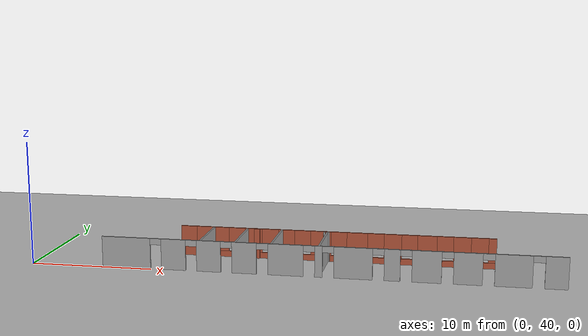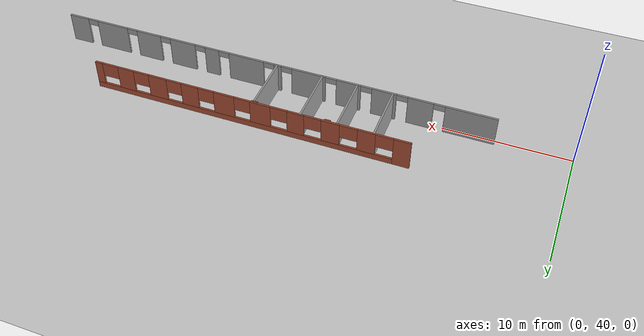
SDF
<sdf version="1.6">
 <world name="default">
  <model name="ground_plane">
   <static>1</static>
   <link name="link">
    <collision name="collision">
     <geometry><plane><normal>0 0 1</normal><size>100 100</size></plane></geometry>
     <surface><friction><ode><mu>100</mu><mu2>50</mu2></ode></friction></surface>
    </collision>
    <visual name="visual">
     <cast_shadows>0</cast_shadows>
     <geometry><plane><normal>0 0 1</normal><size>100 100</size></plane></geometry>
     <material>
      <script><uri>file://media/materials/scripts/gazebo.material</uri><name>Gazebo/Grey</name></script>
     </material>
    </visual>
   </link>
  </model>
  <model name="CVSSP">
   <pose>23.8714 24.094 0 0 -0 0</pose>
   <link name="Wall_303">
    <pose>0.29478 20.9408 0 0 -0 0</pose>
    <visual name="Wall_303_Visual_0">
     <pose>-12.3344 0 1.25 0 -0 0</pose>
     <geometry><box><size>1.33119 0.15 2.5</size></box></geometry>
     <material>
      <script><uri>file://media/materials/scripts/gazebo.material</uri><name>Gazebo/Bricks</name></script>
      <ambient>1 1 1 1</ambient>
     </material>
    </visual>
    <collision name="Wall_303_Collision_0">
     <geometry><box><size>1.33119 0.15 2.5</size></box></geometry>
     <pose>-12.3344 0 1.25 0 -0 0</pose>
    </collision>
    <visual name="Wall_303_Visual_1">
     <pose>0.665598 0 0.25 0 -0 0</pose>
     <geometry><box><size>24.6688 0.15 0.5</size></box></geometry>
     <material>
      <script><uri>file://media/materials/scripts/gazebo.material</uri><name>Gazebo/Bricks</name></script>
      <ambient>1 1 1 1</ambient>
     </material>
    </visual>
    <collision name="Wall_303_Collision_1">
     <geometry><box><size>24.6688 0.15 0.5</size></box></geometry>
     <pose>0.665598 0 0.25 0 -0 0</pose>
    </collision>
    <visual name="Wall_303_Visual_2">
     <pose>-9.60766 0 1.5 0 -0 0</pose>
     <geometry><box><size>1.38884 0.15 2</size></box></geometry>
     <material>
      <script><uri>file://media/materials/scripts/gazebo.material</uri><name>Gazebo/Bricks</name></script>
      <ambient>1 1 1 1</ambient>
     </material>
    </visual>
    <collision name="Wall_303_Collision_2">
     <geometry><box><size>1.38884 0.15 2</size></box></geometry>
     <pose>-9.60766 0 1.5 0 -0 0</pose>
    </collision>
    <visual name="Wall_303_Visual_3">
     <pose>-6.80389 0 1.5 0 -0 0</pose>
     <geometry><box><size>1.45124 0.15 2</size></box></geometry>
     <material>
      <script><uri>file://media/materials/scripts/gazebo.material</uri><name>Gazebo/Bricks</name></script>
      <ambient>1 1 1 1</ambient>
     </material>
    </visual>
    <collision name="Wall_303_Collision_3">
     <geometry><box><size>1.45124 0.15 2</size></box></geometry>
     <pose>-6.80389 0 1.5 0 -0 0</pose>
    </collision>
    <visual name="Wall_303_Visual_4">
     <pose>-4.03476 0 1.5 0 -0 0</pose>
     <geometry><box><size>1.34223 0.15 2</size></box></geometry>
     <material>
      <script><uri>file://media/materials/scripts/gazebo.material</uri><name>Gazebo/Bricks</name></script>
      <ambient>1 1 1 1</ambient>
     </material>
    </visual>
    <collision name="Wall_303_Collision_4">
     <geometry><box><size>1.34223 0.15 2</size></box></geometry>
     <pose>-4.03476 0 1.5 0 -0 0</pose>
    </collision>
    <visual name="Wall_303_Visual_5">
     <pose>-1.16996 0 1.5 0 -0 0</pose>
     <geometry><box><size>1.6766 0.15 2</size></box></geometry>
     <material>
      <script><uri>file://media/materials/scripts/gazebo.material</uri><name>Gazebo/Bricks</name></script>
      <ambient>1 1 1 1</ambient>
     </material>
    </visual>
    <collision name="Wall_303_Collision_5">
     <geometry><box><size>1.6766 0.15 2</size></box></geometry>
     <pose>-1.16996 0 1.5 0 -0 0</pose>
    </collision>
    <visual name="Wall_303_Visual_6">
     <pose>1.82803 0 1.5 0 -0 0</pose>
     <geometry><box><size>1.7106 0.15 2</size></box></geometry>
     <material>
      <script><uri>file://media/materials/scripts/gazebo.material</uri><name>Gazebo/Bricks</name></script>
      <ambient>1 1 1 1</ambient>
     </material>
    </visual>
    <collision name="Wall_303_Collision_6">
     <geometry><box><size>1.7106 0.15 2</size></box></geometry>
     <pose>1.82803 0 1.5 0 -0 0</pose>
    </collision>
    <visual name="Wall_303_Visual_7">
     <pose>4.72401 0 1.5 0 -0 0</pose>
     <geometry><box><size>1.43857 0.15 2</size></box></geometry>
     <material>
      <script><uri>file://media/materials/scripts/gazebo.material</uri><name>Gazebo/Bricks</name></script>
      <ambient>1 1 1 1</ambient>
     </material>
    </visual>
    <collision name="Wall_303_Collision_7">
     <geometry><box><size>1.43857 0.15 2</size></box></geometry>
     <pose>4.72401 0 1.5 0 -0 0</pose>
    </collision>
    <visual name="Wall_303_Visual_8">
     <pose>7.50097 0 1.5 0 -0 0</pose>
     <geometry><box><size>1.55192 0.15 2</size></box></geometry>
     <material>
      <script><uri>file://media/materials/scripts/gazebo.material</uri><name>Gazebo/Bricks</name></script>
      <ambient>1 1 1 1</ambient>
     </material>
    </visual>
    <collision name="Wall_303_Collision_8">
     <geometry><box><size>1.55192 0.15 2</size></box></geometry>
     <pose>7.50097 0 1.5 0 -0 0</pose>
    </collision>
    <visual name="Wall_303_Visual_9">
     <pose>10.2921 0 1.5 0 -0 0</pose>
     <geometry><box><size>1.3989 0.15 2</size></box></geometry>
     <material>
      <script><uri>file://media/materials/scripts/gazebo.material</uri><name>Gazebo/Bricks</name></script>
      <ambient>1 1 1 1</ambient>
     </material>
    </visual>
    <collision name="Wall_303_Collision_9">
     <geometry><box><size>1.3989 0.15 2</size></box></geometry>
     <pose>10.2921 0 1.5 0 -0 0</pose>
    </collision>
    <visual name="Wall_303_Visual_10">
     <pose>12.682 0 1.5 0 -0 0</pose>
     <geometry><box><size>0.636054 0.15 2</size></box></geometry>
     <material>
      <script><uri>file://media/materials/scripts/gazebo.material</uri><name>Gazebo/Bricks</name></script>
      <ambient>1 1 1 1</ambient>
     </material>
    </visual>
    <collision name="Wall_303_Collision_10">
     <geometry><box><size>0.636054 0.15 2</size></box></geometry>
     <pose>12.682 0 1.5 0 -0 0</pose>
    </collision>
    <visual name="Wall_303_Visual_11">
     <pose>-10.9854 0 1.9 0 -0 0</pose>
     <geometry><box><size>1.36673 0.15 1.2</size></box></geometry>
     <material>
      <script><uri>file://media/materials/scripts/gazebo.material</uri><name>Gazebo/Bricks</name></script>
      <ambient>1 1 1 1</ambient>
     </material>
    </visual>
    <collision name="Wall_303_Collision_11">
     <geometry><box><size>1.36673 0.15 1.2</size></box></geometry>
     <pose>-10.9854 0 1.9 0 -0 0</pose>
    </collision>
    <visual name="Wall_303_Visual_12">
     <pose>-8.22138 0 1.9 0 -0 0</pose>
     <geometry><box><size>1.38373 0.15 1.2</size></box></geometry>
     <material>
      <script><uri>file://media/materials/scripts/gazebo.material</uri><name>Gazebo/Bricks</name></script>
      <ambient>1 1 1 1</ambient>
     </material>
    </visual>
    <collision name="Wall_303_Collision_12">
     <geometry><box><size>1.38373 0.15 1.2</size></box></geometry>
     <pose>-8.22138 0 1.9 0 -0 0</pose>
    </collision>
    <visual name="Wall_303_Visual_13">
     <pose>-5.39208 0 1.9 0 -0 0</pose>
     <geometry><box><size>1.37239 0.15 1.2</size></box></geometry>
     <material>
      <script><uri>file://media/materials/scripts/gazebo.material</uri><name>Gazebo/Bricks</name></script>
      <ambient>1 1 1 1</ambient>
     </material>
    </visual>
    <collision name="Wall_303_Collision_13">
     <geometry><box><size>1.37239 0.15 1.2</size></box></geometry>
     <pose>-5.39208 0 1.9 0 -0 0</pose>
    </collision>
    <visual name="Wall_303_Visual_14">
     <pose>-2.68595 0 1.9 0 -0 0</pose>
     <geometry><box><size>1.35539 0.15 1.2</size></box></geometry>
     <material>
      <script><uri>file://media/materials/scripts/gazebo.material</uri><name>Gazebo/Bricks</name></script>
      <ambient>1 1 1 1</ambient>
     </material>
    </visual>
    <collision name="Wall_303_Collision_14">
     <geometry><box><size>1.35539 0.15 1.2</size></box></geometry>
     <pose>-2.68595 0 1.9 0 -0 0</pose>
    </collision>
    <visual name="Wall_303_Visual_15">
     <pose>0.320535 0 1.9 0 -0 0</pose>
     <geometry><box><size>1.30439 0.15 1.2</size></box></geometry>
     <material>
      <script><uri>file://media/materials/scripts/gazebo.material</uri><name>Gazebo/Bricks</name></script>
      <ambient>1 1 1 1</ambient>
     </material>
    </visual>
    <collision name="Wall_303_Collision_15">
     <geometry><box><size>1.30439 0.15 1.2</size></box></geometry>
     <pose>0.320535 0 1.9 0 -0 0</pose>
    </collision>
    <visual name="Wall_303_Visual_16">
     <pose>3.34402 0 1.9 0 -0 0</pose>
     <geometry><box><size>1.32139 0.15 1.2</size></box></geometry>
     <material>
      <script><uri>file://media/materials/scripts/gazebo.material</uri><name>Gazebo/Bricks</name></script>
      <ambient>1 1 1 1</ambient>
     </material>
    </visual>
    <collision name="Wall_303_Collision_16">
     <geometry><box><size>1.32139 0.15 1.2</size></box></geometry>
     <pose>3.34402 0 1.9 0 -0 0</pose>
    </collision>
    <visual name="Wall_303_Visual_17">
     <pose>6.08415 0 1.9 0 -0 0</pose>
     <geometry><box><size>1.28172 0.15 1.2</size></box></geometry>
     <material>
      <script><uri>file://media/materials/scripts/gazebo.material</uri><name>Gazebo/Bricks</name></script>
      <ambient>1 1 1 1</ambient>
     </material>
    </visual>
    <collision name="Wall_303_Collision_17">
     <geometry><box><size>1.28172 0.15 1.2</size></box></geometry>
     <pose>6.08415 0 1.9 0 -0 0</pose>
    </collision>
    <visual name="Wall_303_Visual_18">
     <pose>8.93479 0 1.9 0 -0 0</pose>
     <geometry><box><size>1.31572 0.15 1.2</size></box></geometry>
     <material>
      <script><uri>file://media/materials/scripts/gazebo.material</uri><name>Gazebo/Bricks</name></script>
      <ambient>1 1 1 1</ambient>
     </material>
    </visual>
    <collision name="Wall_303_Collision_18">
     <geometry><box><size>1.31572 0.15 1.2</size></box></geometry>
     <pose>8.93479 0 1.9 0 -0 0</pose>
    </collision>
    <visual name="Wall_303_Visual_19">
     <pose>11.6777 0 1.9 0 -0 0</pose>
     <geometry><box><size>1.37239 0.15 1.2</size></box></geometry>
     <material>
      <script><uri>file://media/materials/scripts/gazebo.material</uri><name>Gazebo/Bricks</name></script>
      <ambient>1 1 1 1</ambient>
     </material>
    </visual>
    <collision name="Wall_303_Collision_19">
     <geometry><box><size>1.37239 0.15 1.2</size></box></geometry>
     <pose>11.6777 0 1.9 0 -0 0</pose>
    </collision>
   </link>
   <link name="Wall_311">
    <collision name="Wall_311_Collision">
     <geometry><box><size>4.75 0.15 2.5</size></box></geometry>
     <pose>0 0 1.25 0 -0 0</pose>
    </collision>
    <visual name="Wall_311_Visual">
     <pose>0 0 1.25 0 -0 0</pose>
     <geometry><box><size>4.75 0.15 2.5</size></box></geometry>
     <material>
      <script><uri>file://media/materials/scripts/gazebo.material</uri><name>Gazebo/Grey</name></script>
      <ambient>0.588235 0.588235 0.588235 1</ambient>
     </material>
    </visual>
    <pose>-9.85033 18.612 0 0 0 -1.5708</pose>
   </link>
   <link name="Wall_315">
    <collision name="Wall_315_Collision">
     <geometry><box><size>4.75 0.15 2.5</size></box></geometry>
     <pose>0 0 1.25 0 -0 0</pose>
    </collision>
    <visual name="Wall_315_Visual">
     <pose>0 0 1.25 0 -0 0</pose>
     <geometry><box><size>4.75 0.15 2.5</size></box></geometry>
     <material>
      <script><uri>file://media/materials/scripts/gazebo.material</uri><name>Gazebo/Grey</name></script>
      <ambient>0.588235 0.588235 0.588235 1</ambient>
     </material>
    </visual>
    <pose>-7.00685 18.5251 0 0 -0 1.5708</pose>
   </link>
   <link name="Wall_318">
    <collision name="Wall_318_Collision">
     <geometry><box><size>4.79 0.15 2.5</size></box></geometry>
     <pose>0 0 1.25 0 -0 0</pose>
    </collision>
    <visual name="Wall_318_Visual">
     <pose>0 0 1.25 0 -0 0</pose>
     <geometry><box><size>4.79 0.15 2.5</size></box></geometry>
     <material>
      <script><uri>file://media/materials/scripts/gazebo.material</uri><name>Gazebo/Grey</name></script>
      <ambient>1 1 1 1</ambient>
     </material>
    </visual>
    <pose>-4.1133 18.5854 0 0 0 -1.5708</pose>
   </link>
   <link name="Wall_320">
    <collision name="Wall_320_Collision">
     <geometry><box><size>4.75 0.15 2.5</size></box></geometry>
     <pose>0 0 1.25 0 -0 0</pose>
    </collision>
    <visual name="Wall_320_Visual">
     <pose>0 0 1.25 0 -0 0</pose>
     <geometry><box><size>4.75 0.15 2.5</size></box></geometry>
     <material>
      <script><uri>file://media/materials/scripts/gazebo.material</uri><name>Gazebo/Grey</name></script>
      <ambient>0.588235 0.588235 0.588235 1</ambient>
     </material>
    </visual>
    <pose>-0.323303 18.5354 0 0 -0 1.5708</pose>
   </link>
   <link name="Wall_326">
    <collision name="Wall_326_Collision">
     <geometry><box><size>0.41 0.15 2.5</size></box></geometry>
     <pose>0 0 1.25 0 -0 0</pose>
    </collision>
    <visual name="Wall_326_Visual">
     <pose>0 0 1.25 0 -0 0</pose>
     <geometry><box><size>0.41 0.15 2.5</size></box></geometry>
     <material>
      <script><uri>file://media/materials/scripts/gazebo.material</uri><name>Gazebo/Bricks</name></script>
      <ambient>1 1 1 1</ambient>
     </material>
    </visual>
    <pose>-0.453303 20.8354 0 0 -0 3.14159</pose>
   </link>
   <link name="Wall_327">
    <collision name="Wall_327_Collision">
     <geometry><box><size>0.25 0.15 2.5</size></box></geometry>
     <pose>0 0 1.25 0 -0 0</pose>
    </collision>
    <visual name="Wall_327_Visual">
     <pose>0 0 1.25 0 -0 0</pose>
     <geometry><box><size>0.25 0.15 2.5</size></box></geometry>
     <material>
      <script><uri>file://media/materials/scripts/gazebo.material</uri><name>Gazebo/Grey</name></script>
      <ambient>1 1 1 1</ambient>
     </material>
    </visual>
    <pose>-0.583303 20.8854 0 0 -0 1.5708</pose>
   </link>
   <link name="Wall_329">
    <collision name="Wall_329_Collision">
     <geometry><box><size>0.25 0.15 2.5</size></box></geometry>
     <pose>0 0 1.25 0 -0 0</pose>
    </collision>
    <visual name="Wall_329_Visual">
     <pose>0 0 1.25 0 -0 0</pose>
     <geometry><box><size>0.25 0.15 2.5</size></box></geometry>
     <material>
      <script><uri>file://media/materials/scripts/gazebo.material</uri><name>Gazebo/Grey</name></script>
      <ambient>1 1 1 1</ambient>
     </material>
    </visual>
    <pose>-0.273303 20.8354 0 0 -0 0</pose>
   </link>
   <link name="Wall_330">
    <collision name="Wall_330_Collision">
     <geometry><box><size>0.25 0.15 2.5</size></box></geometry>
     <pose>0 0 1.25 0 -0 0</pose>
    </collision>
    <visual name="Wall_330_Visual">
     <pose>0 0 1.25 0 -0 0</pose>
     <geometry><box><size>0.25 0.15 2.5</size></box></geometry>
     <material>
      <script><uri>file://media/materials/scripts/gazebo.material</uri><name>Gazebo/Grey</name></script>
      <ambient>1 1 1 1</ambient>
     </material>
    </visual>
    <pose>-0.223303 20.8854 0 0 -0 1.5708</pose>
   </link>
   <link name="Wall_663">
    <collision name="Wall_663_Collision">
     <geometry><box><size>0.456076 0.15 2.5</size></box></geometry>
     <pose>0 0 1.25 0 -0 0</pose>
    </collision>
    <visual name="Wall_663_Visual">
     <pose>0 0 1.25 0 -0 0</pose>
     <geometry><box><size>0.456076 0.15 2.5</size></box></geometry>
     <material>
      <script><uri>file://media/materials/scripts/gazebo.material</uri><name>Gazebo/Bricks</name></script>
      <ambient>1 1 1 1</ambient>
     </material>
    </visual>
    <pose>-6.21292 20.8145 0 0 -0 0</pose>
   </link>
   <link name="Wall_70">
    <pose>0.280393 16.1874 0 0 -0 3.14159</pose>
    <visual name="Wall_70_Visual_0">
     <pose>-17.3872 0 1.25 0 -0 0</pose>
     <geometry><box><size>1.72569 0.15 2.5</size></box></geometry>
     <material>
      <script><uri>file://media/materials/scripts/gazebo.material</uri><name>Gazebo/Grey</name></script>
      <ambient>0.588235 0.588235 0.588235 1</ambient>
     </material>
    </visual>
    <collision name="Wall_70_Collision_0">
     <geometry><box><size>1.72569 0.15 2.5</size></box></geometry>
     <pose>-17.3872 0 1.25 0 -0 0</pose>
    </collision>
    <visual name="Wall_70_Visual_1">
     <pose>-14.2239 0 1.25 0 -0 0</pose>
     <geometry><box><size>2.8009 0.15 2.5</size></box></geometry>
     <material>
      <script><uri>file://media/materials/scripts/gazebo.material</uri><name>Gazebo/Grey</name></script>
      <ambient>0.588235 0.588235 0.588235 1</ambient>
     </material>
    </visual>
    <collision name="Wall_70_Collision_1">
     <geometry><box><size>2.8009 0.15 2.5</size></box></geometry>
     <pose>-14.2239 0 1.25 0 -0 0</pose>
    </collision>
    <visual name="Wall_70_Visual_2">
     <pose>-10.8352 0 1.25 0 -0 0</pose>
     <geometry><box><size>2.17637 0.15 2.5</size></box></geometry>
     <material>
      <script><uri>file://media/materials/scripts/gazebo.material</uri><name>Gazebo/Grey</name></script>
      <ambient>0.588235 0.588235 0.588235 1</ambient>
     </material>
    </visual>
    <collision name="Wall_70_Collision_2">
     <geometry><box><size>2.17637 0.15 2.5</size></box></geometry>
     <pose>-10.8352 0 1.25 0 -0 0</pose>
    </collision>
    <visual name="Wall_70_Visual_3">
     <pose>-7.72416 0 1.25 0 -0 0</pose>
     <geometry><box><size>2.24576 0.15 2.5</size></box></geometry>
     <material>
      <script><uri>file://media/materials/scripts/gazebo.material</uri><name>Gazebo/Grey</name></script>
      <ambient>0.588235 0.588235 0.588235 1</ambient>
     </material>
    </visual>
    <collision name="Wall_70_Collision_3">
     <geometry><box><size>2.24576 0.15 2.5</size></box></geometry>
     <pose>-7.72416 0 1.25 0 -0 0</pose>
    </collision>
    <visual name="Wall_70_Visual_4">
     <pose>-5.08727 0 1.25 0 -0 0</pose>
     <geometry><box><size>1.22802 0.15 2.5</size></box></geometry>
     <material>
      <script><uri>file://media/materials/scripts/gazebo.material</uri><name>Gazebo/Grey</name></script>
      <ambient>0.588235 0.588235 0.588235 1</ambient>
     </material>
    </visual>
    <collision name="Wall_70_Collision_4">
     <geometry><box><size>1.22802 0.15 2.5</size></box></geometry>
     <pose>-5.08727 0 1.25 0 -0 0</pose>
    </collision>
    <visual name="Wall_70_Visual_5">
     <pose>-2.06873 0 1.25 0 -0 0</pose>
     <geometry><box><size>3.00907 0.15 2.5</size></box></geometry>
     <material>
      <script><uri>file://media/materials/scripts/gazebo.material</uri><name>Gazebo/Grey</name></script>
      <ambient>0.588235 0.588235 0.588235 1</ambient>
     </material>
    </visual>
    <collision name="Wall_70_Collision_5">
     <geometry><box><size>3.00907 0.15 2.5</size></box></geometry>
     <pose>-2.06873 0 1.25 0 -0 0</pose>
    </collision>
    <visual name="Wall_70_Visual_6">
     <pose>0.637556 0 1.25 0 -0 0</pose>
     <geometry><box><size>0.60349 0.15 2.5</size></box></geometry>
     <material>
      <script><uri>file://media/materials/scripts/gazebo.material</uri><name>Gazebo/Grey</name></script>
      <ambient>0.588235 0.588235 0.588235 1</ambient>
     </material>
    </visual>
    <collision name="Wall_70_Collision_6">
     <geometry><box><size>0.60349 0.15 2.5</size></box></geometry>
     <pose>0.637556 0 1.25 0 -0 0</pose>
    </collision>
    <visual name="Wall_70_Visual_7">
     <pose>3.25131 0 1.25 0 -0 0</pose>
     <geometry><box><size>2.82403 0.15 2.5</size></box></geometry>
     <material>
      <script><uri>file://media/materials/scripts/gazebo.material</uri><name>Gazebo/Grey</name></script>
      <ambient>0.588235 0.588235 0.588235 1</ambient>
     </material>
    </visual>
    <collision name="Wall_70_Collision_7">
     <geometry><box><size>2.82403 0.15 2.5</size></box></geometry>
     <pose>3.25131 0 1.25 0 -0 0</pose>
    </collision>
    <visual name="Wall_70_Visual_8">
     <pose>6.55899 0 1.25 0 -0 0</pose>
     <geometry><box><size>1.99133 0.15 2.5</size></box></geometry>
     <material>
      <script><uri>file://media/materials/scripts/gazebo.material</uri><name>Gazebo/Grey</name></script>
      <ambient>0.588235 0.588235 0.588235 1</ambient>
     </material>
    </visual>
    <collision name="Wall_70_Collision_8">
     <geometry><box><size>1.99133 0.15 2.5</size></box></geometry>
     <pose>6.55899 0 1.25 0 -0 0</pose>
    </collision>
    <visual name="Wall_70_Visual_9">
     <pose>9.43875 0 1.25 0 -0 0</pose>
     <geometry><box><size>1.9682 0.15 2.5</size></box></geometry>
     <material>
      <script><uri>file://media/materials/scripts/gazebo.material</uri><name>Gazebo/Grey</name></script>
      <ambient>0.588235 0.588235 0.588235 1</ambient>
     </material>
    </visual>
    <collision name="Wall_70_Collision_9">
     <geometry><box><size>1.9682 0.15 2.5</size></box></geometry>
     <pose>9.43875 0 1.25 0 -0 0</pose>
    </collision>
    <visual name="Wall_70_Visual_10">
     <pose>12.3301 0 1.25 0 -0 0</pose>
     <geometry><box><size>2.01446 0.15 2.5</size></box></geometry>
     <material>
      <script><uri>file://media/materials/scripts/gazebo.material</uri><name>Gazebo/Grey</name></script>
      <ambient>0.588235 0.588235 0.588235 1</ambient>
     </material>
    </visual>
    <collision name="Wall_70_Collision_10">
     <geometry><box><size>2.01446 0.15 2.5</size></box></geometry>
     <pose>12.3301 0 1.25 0 -0 0</pose>
    </collision>
    <visual name="Wall_70_Visual_11">
     <pose>16.2437 0 1.25 0 -0 0</pose>
     <geometry><box><size>4.01269 0.15 2.5</size></box></geometry>
     <material>
      <script><uri>file://media/materials/scripts/gazebo.material</uri><name>Gazebo/Grey</name></script>
      <ambient>0.588235 0.588235 0.588235 1</ambient>
     </material>
    </visual>
    <collision name="Wall_70_Collision_11">
     <geometry><box><size>4.01269 0.15 2.5</size></box></geometry>
     <pose>16.2437 0 1.25 0 -0 0</pose>
    </collision>
    <visual name="Wall_70_Visual_12">
     <pose>-16.0743 0 2.25 0 -0 0</pose>
     <geometry><box><size>0.9 0.15 0.5</size></box></geometry>
     <material>
      <script><uri>file://media/materials/scripts/gazebo.material</uri><name>Gazebo/Grey</name></script>
      <ambient>0.588235 0.588235 0.588235 1</ambient>
     </material>
    </visual>
    <collision name="Wall_70_Collision_12">
     <geometry><box><size>0.9 0.15 0.5</size></box></geometry>
     <pose>-16.0743 0 2.25 0 -0 0</pose>
    </collision>
    <visual name="Wall_70_Visual_13">
     <pose>-12.3734 0 2.25 0 -0 0</pose>
     <geometry><box><size>0.9 0.15 0.5</size></box></geometry>
     <material>
      <script><uri>file://media/materials/scripts/gazebo.material</uri><name>Gazebo/Grey</name></script>
      <ambient>0.588235 0.588235 0.588235 1</ambient>
     </material>
    </visual>
    <collision name="Wall_70_Collision_13">
     <geometry><box><size>0.9 0.15 0.5</size></box></geometry>
     <pose>-12.3734 0 2.25 0 -0 0</pose>
    </collision>
    <visual name="Wall_70_Visual_14">
     <pose>-9.29704 0 2.25 0 -0 0</pose>
     <geometry><box><size>0.9 0.15 0.5</size></box></geometry>
     <material>
      <script><uri>file://media/materials/scripts/gazebo.material</uri><name>Gazebo/Grey</name></script>
      <ambient>0.588235 0.588235 0.588235 1</ambient>
     </material>
    </visual>
    <collision name="Wall_70_Collision_14">
     <geometry><box><size>0.9 0.15 0.5</size></box></geometry>
     <pose>-9.29704 0 2.25 0 -0 0</pose>
    </collision>
    <visual name="Wall_70_Visual_15">
     <pose>-6.15128 0 2.25 0 -0 0</pose>
     <geometry><box><size>0.9 0.15 0.5</size></box></geometry>
     <material>
      <script><uri>file://media/materials/scripts/gazebo.material</uri><name>Gazebo/Grey</name></script>
      <ambient>0.588235 0.588235 0.588235 1</ambient>
     </material>
    </visual>
    <collision name="Wall_70_Collision_15">
     <geometry><box><size>0.9 0.15 0.5</size></box></geometry>
     <pose>-6.15128 0 2.25 0 -0 0</pose>
    </collision>
    <visual name="Wall_70_Visual_16">
     <pose>-4.02326 0 2.25 0 -0 0</pose>
     <geometry><box><size>0.9 0.15 0.5</size></box></geometry>
     <material>
      <script><uri>file://media/materials/scripts/gazebo.material</uri><name>Gazebo/Grey</name></script>
      <ambient>0.588235 0.588235 0.588235 1</ambient>
     </material>
    </visual>
    <collision name="Wall_70_Collision_16">
     <geometry><box><size>0.9 0.15 0.5</size></box></geometry>
     <pose>-4.02326 0 2.25 0 -0 0</pose>
    </collision>
    <visual name="Wall_70_Visual_17">
     <pose>-0.114189 0 2.25 0 -0 0</pose>
     <geometry><box><size>0.9 0.15 0.5</size></box></geometry>
     <material>
      <script><uri>file://media/materials/scripts/gazebo.material</uri><name>Gazebo/Grey</name></script>
      <ambient>0.588235 0.588235 0.588235 1</ambient>
     </material>
    </visual>
    <collision name="Wall_70_Collision_17">
     <geometry><box><size>0.9 0.15 0.5</size></box></geometry>
     <pose>-0.114189 0 2.25 0 -0 0</pose>
    </collision>
    <visual name="Wall_70_Visual_18">
     <pose>1.3893 0 2.25 0 -0 0</pose>
     <geometry><box><size>0.9 0.15 0.5</size></box></geometry>
     <material>
      <script><uri>file://media/materials/scripts/gazebo.material</uri><name>Gazebo/Grey</name></script>
      <ambient>0.588235 0.588235 0.588235 1</ambient>
     </material>
    </visual>
    <collision name="Wall_70_Collision_18">
     <geometry><box><size>0.9 0.15 0.5</size></box></geometry>
     <pose>1.3893 0 2.25 0 -0 0</pose>
    </collision>
    <visual name="Wall_70_Visual_19">
     <pose>5.11333 0 2.25 0 -0 0</pose>
     <geometry><box><size>0.9 0.15 0.5</size></box></geometry>
     <material>
      <script><uri>file://media/materials/scripts/gazebo.material</uri><name>Gazebo/Grey</name></script>
      <ambient>0.588235 0.588235 0.588235 1</ambient>
     </material>
    </visual>
    <collision name="Wall_70_Collision_19">
     <geometry><box><size>0.9 0.15 0.5</size></box></geometry>
     <pose>5.11333 0 2.25 0 -0 0</pose>
    </collision>
    <visual name="Wall_70_Visual_20">
     <pose>8.00465 0 2.25 0 -0 0</pose>
     <geometry><box><size>0.9 0.15 0.5</size></box></geometry>
     <material>
      <script><uri>file://media/materials/scripts/gazebo.material</uri><name>Gazebo/Grey</name></script>
      <ambient>0.588235 0.588235 0.588235 1</ambient>
     </material>
    </visual>
    <collision name="Wall_70_Collision_20">
     <geometry><box><size>0.9 0.15 0.5</size></box></geometry>
     <pose>8.00465 0 2.25 0 -0 0</pose>
    </collision>
    <visual name="Wall_70_Visual_21">
     <pose>10.8728 0 2.25 0 -0 0</pose>
     <geometry><box><size>0.9 0.15 0.5</size></box></geometry>
     <material>
      <script><uri>file://media/materials/scripts/gazebo.material</uri><name>Gazebo/Grey</name></script>
      <ambient>0.588235 0.588235 0.588235 1</ambient>
     </material>
    </visual>
    <collision name="Wall_70_Collision_21">
     <geometry><box><size>0.9 0.15 0.5</size></box></geometry>
     <pose>10.8728 0 2.25 0 -0 0</pose>
    </collision>
    <visual name="Wall_70_Visual_22">
     <pose>13.7873 0 2.25 0 -0 0</pose>
     <geometry><box><size>0.9 0.15 0.5</size></box></geometry>
     <material>
      <script><uri>file://media/materials/scripts/gazebo.material</uri><name>Gazebo/Grey</name></script>
      <ambient>0.588235 0.588235 0.588235 1</ambient>
     </material>
    </visual>
    <collision name="Wall_70_Collision_22">
     <geometry><box><size>0.9 0.15 0.5</size></box></geometry>
     <pose>13.7873 0 2.25 0 -0 0</pose>
    </collision>
   </link>
   <static>1</static>
  </model>
 </world>
</sdf>
